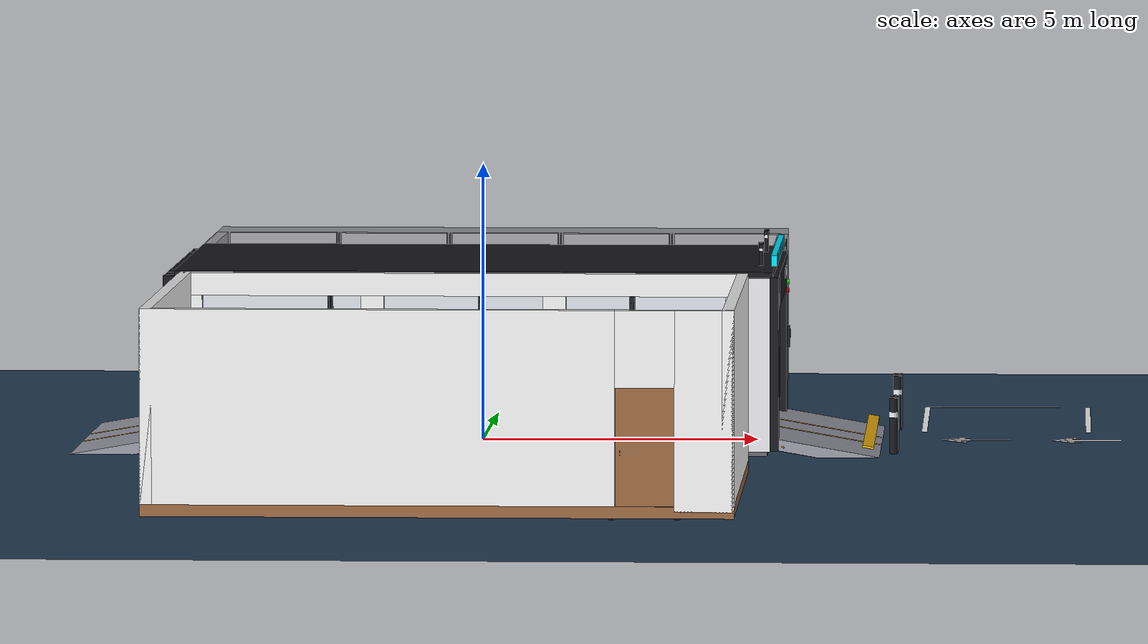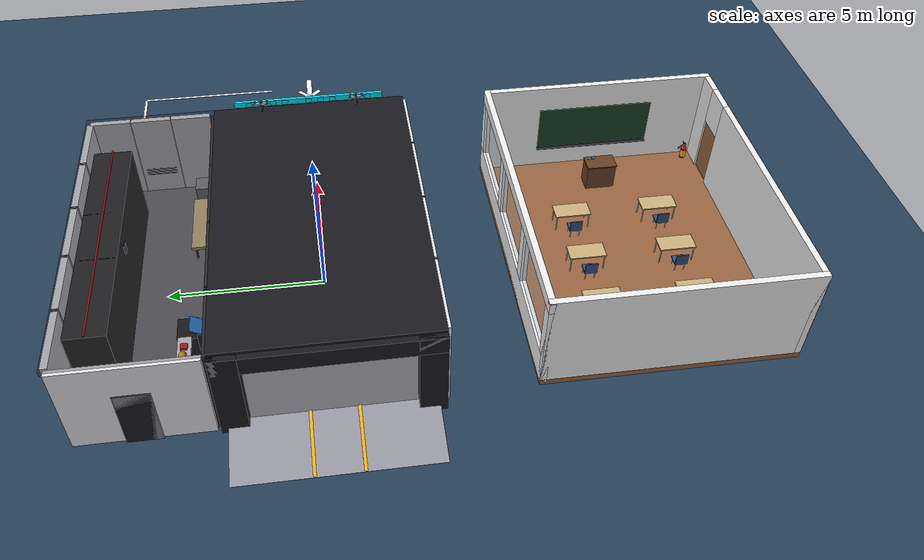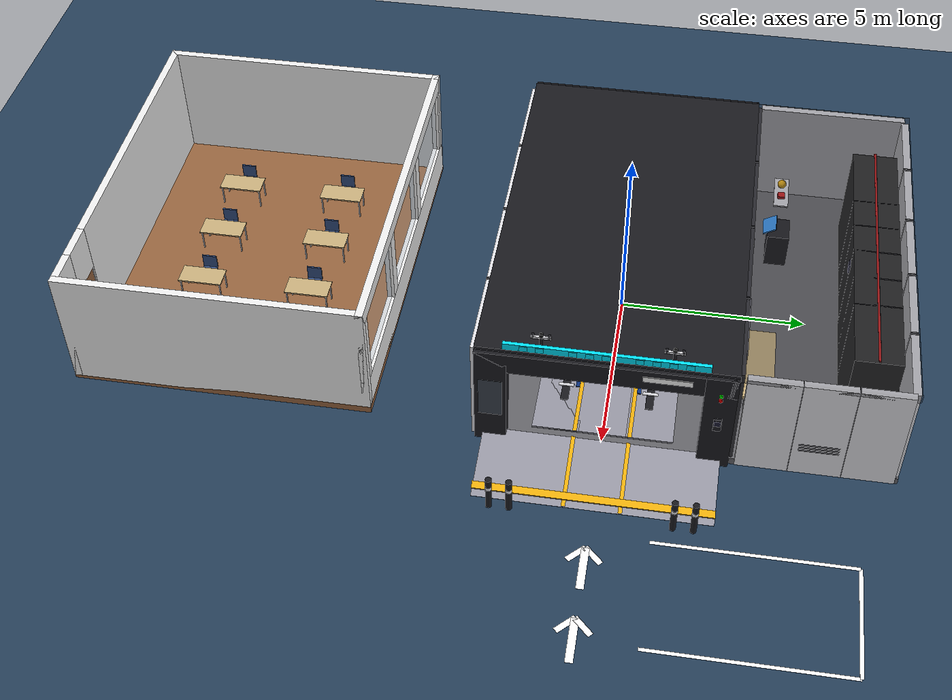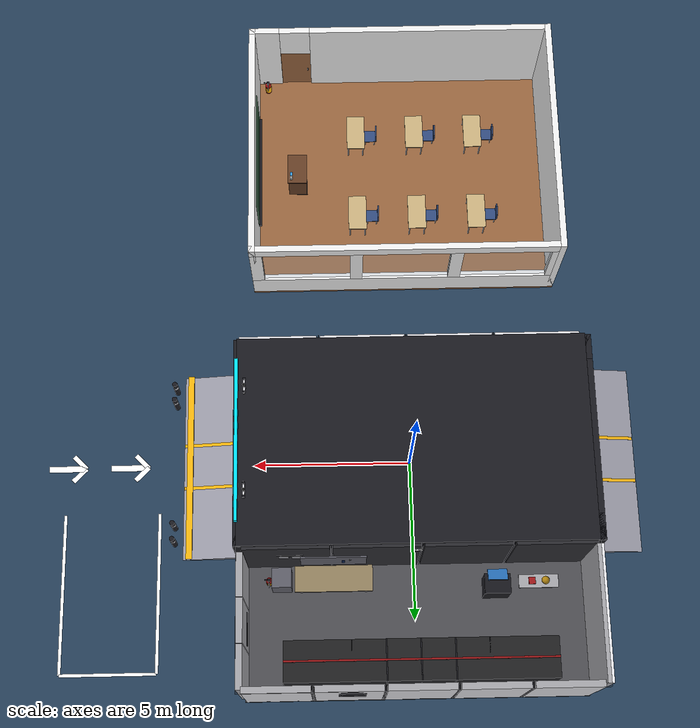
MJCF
<mujoco model="nio_power_station">
  <statistic center="0 0 1.5" extent="10.0"/>

  <visual>
    <!-- 3. 光照响应优化: Improved Lighting Quality -->
    <!-- Increased shadow quality and resolution settings if supported by viewer -->
    <headlight diffuse="0.4 0.4 0.4" ambient="0.2 0.2 0.2" specular="0.1 0.1 0.1"/>
    <rgba haze="0.15 0.25 0.35 1"/>
    <global azimuth="-120" elevation="-20" offwidth="1920" offheight="1080"/>
    <quality shadowsize="4096" offsamples="8"/> <!-- Enable high-res shadows and MSAA -->
    <map shadowclip="0.5" shadowscale="0.5"/>
  </visual>

  <asset>
    <!-- Environment Assets -->
    <texture type="skybox" builtin="gradient" rgb1="0.3 0.5 0.7" rgb2="0 0 0" width="512" height="3072"/>
    <texture type="2d" name="groundplane" builtin="checker" mark="edge" rgb1="0.2 0.3 0.4" rgb2="0.1 0.2 0.3"
      markrgb="0.8 0.8 0.8" width="300" height="300"/>

    <!-- 1. 材质系统升级: PBR-inspired Material Calibration -->
    <!-- MuJoCo Material Model:
         reflectance ~= Metallic/Specular intensity
         shininess ~= 1.0 / Roughness (High shininess = Low roughness)
         rgba ~= Albedo
    -->

    <material name="groundplane" texture="groundplane" texuniform="true" texrepeat="5 5" reflectance="0.1" shininess="0.1" specular="0.1"/>

    <!-- Metals (Silver/Chrome) -->
    <!-- High reflectance (0.8+), High specular (1.0), High shininess (0.8+) -->
    <material name="mat_wall_silver" rgba="0.9 0.9 0.92 1" reflectance="0.7" shininess="0.8" specular="1.0"/>
    <material name="mat_metal_grey" rgba="0.5 0.5 0.55 1" reflectance="0.6" shininess="0.6" specular="0.8"/>
    <material name="mat_metal_plate" rgba="0.6 0.6 0.65 1" reflectance="0.5" shininess="0.7" specular="0.6"/> <!-- Checker plate simulation -->

    <!-- Dielectrics (Plastics/Paints/Matte) -->
    <!-- Low reflectance (0.1-0.3), Moderate specular, Variable shininess -->
    <material name="mat_frame_black" rgba="0.1 0.1 0.12 1" reflectance="0.1" shininess="0.3" specular="0.3"/> <!-- Matte black metal -->
    <material name="mat_interior_dark" rgba="0.15 0.15 0.15 1" reflectance="0.05" shininess="0.1" specular="0.1"/> <!-- Dark matte plastic -->
    <material name="mat_wall_dark_grey" rgba="0.2 0.2 0.22 1" reflectance="0.1" shininess="0.2" specular="0.2"/>

    <!-- Glass (Transparent) -->
    <material name="mat_glass" rgba="0.6 0.7 0.8 0.3" reflectance="0.5" shininess="0.95" specular="1.0"/>
    <material name="mat_roof_transparent" rgba="0.1 0.1 0.12 0.3" reflectance="0.1" shininess="0.3" specular="0.3"/>

    <!-- Emissive Materials (Lighting) -->
    <material name="mat_light_strip" rgba="0.9 0.9 1.0 1" emission="1.0"/>
    <material name="mat_nio_blue_glow" rgba="0.0 0.9 1.0 1" emission="1.0" reflectance="0.1"/>
    <material name="mat_screen_glow" rgba="0.2 0.6 1.0 1" emission="0.6"/>
    <material name="mat_light_green" rgba="0 1 0 1" emission="1.0"/>
    <material name="mat_light_red" rgba="1 0 0 1" emission="1.0"/>
    <material name="mat_lcd_display" rgba="0.1 0.1 0.2 1" emission="0.4"/>
    <material name="mat_text_white" rgba="1 1 1 1" emission="0.5"/>

    <!-- Functional Colors -->
    <material name="mat_warning_yellow" rgba="0.95 0.7 0.05 1" reflectance="0.2" shininess="0.4" specular="0.2"/>
    <material name="mat_battery_pack" rgba="0.15 0.15 0.15 1" reflectance="0.2" shininess="0.5" specular="0.4"/>
    <material name="mat_floor_concrete" rgba="0.4 0.4 0.42 1" reflectance="0.1" shininess="0.1" specular="0.1"/> <!-- Rough concrete -->
    <material name="mat_door_seam" rgba="0.02 0.02 0.02 1" reflectance="0.0"/>

    <!-- Mechanical Parts -->
    <material name="mat_mechanical_blue" rgba="0.05 0.2 0.5 1" reflectance="0.4" shininess="0.6" specular="0.6"/> <!-- Painted metal -->
    <material name="mat_roller_yellow" rgba="0.9 0.7 0.1 1" reflectance="0.3" shininess="0.5" specular="0.4"/> <!-- Hard plastic/metal -->
    <material name="mat_lidar_window" rgba="0.05 0.05 0.05 1" reflectance="0.2" shininess="0.9" specular="0.8"/> <!-- Glossy black plastic -->

    <!-- Sinopec Materials - Calibrated -->
    <material name="mat_sinopec_red" rgba="0.85 0.1 0.1 1" reflectance="0.3" shininess="0.7" specular="0.5"/> <!-- Glossy plastic/metal -->
    <material name="mat_sinopec_white" rgba="0.92 0.92 0.92 1" reflectance="0.4" shininess="0.6" specular="0.5"/>
    <material name="mat_pump_island" rgba="0.2 0.2 0.2 1" reflectance="0.1" shininess="0.2" specular="0.2"/> <!-- Matte -->
    <material name="mat_pump_screen" rgba="0.05 0.05 0.15 1" emission="0.3"/>
    <material name="mat_hose_black" rgba="0.1 0.1 0.1 1" reflectance="0.05" shininess="0.2" specular="0.1"/> <!-- Rubber -->
    <material name="mat_hose_nozzle_green" rgba="0.0 0.5 0.0 1" reflectance="0.2" shininess="0.4" specular="0.3"/>
    <material name="mat_hose_nozzle_red" rgba="0.7 0.0 0.0 1" reflectance="0.2" shininess="0.4" specular="0.3"/>
    <material name="mat_hose_nozzle_yellow" rgba="0.9 0.8 0.0 1" reflectance="0.2" shininess="0.4" specular="0.3"/>
    <material name="mat_pump_panel_grey" rgba="0.6 0.6 0.65 1" reflectance="0.3" shininess="0.4" specular="0.3"/>

    <!-- Classroom Materials -->
    <material name="mat_class_wall_white" rgba="0.95 0.95 0.95 1" reflectance="0.1" shininess="0.1" specular="0.1"/>
    <material name="mat_class_floor_wood" rgba="0.6 0.4 0.25 1" reflectance="0.1" shininess="0.2" specular="0.1"/>
    <material name="mat_blackboard" rgba="0.1 0.25 0.15 1" reflectance="0.05" shininess="0.1" specular="0.1"/>
    <material name="mat_desk_top" rgba="0.8 0.7 0.5 1" reflectance="0.2" shininess="0.3" specular="0.2"/>
    <material name="mat_chair_blue" rgba="0.2 0.3 0.5 1" reflectance="0.1" shininess="0.3" specular="0.2"/>
    <material name="mat_podium" rgba="0.4 0.25 0.15 1" reflectance="0.2" shininess="0.3" specular="0.2"/>
    <material name="mat_window_glass" rgba="0.7 0.8 0.9 0.2" reflectance="0.3" shininess="0.9" specular="0.8"/>
  </asset>

  <worldbody>
    <!-- 3. 光照响应优化: Enhanced Lighting -->
    <!-- Main directional light (Sun) with Shadows enabled -->
    <light pos="5 -5 10" dir="-0.5 0.5 -1" directional="true" castshadow="true" diffuse="0.8 0.8 0.8" specular="0.3 0.3 0.3"/>

    <!-- Fill light (Skylight approximation) -->
    <light pos="-5 5 10" dir="0.5 -0.5 -1" directional="true" castshadow="false" diffuse="0.3 0.3 0.4" specular="0.0 0.0 0.0"/>

    <!-- Ground Markings -->
    <body name="floor_markings" pos="0 0 0.01">
        <!-- Entrance Arrow 1 -->
        <body name="arrow_ent_1" pos="9 0 0">
            <geom name="a1_stem" type="box" size="0.6 0.1 0.001" material="mat_text_white"/>
            <geom name="a1_head_l" type="box" size="0.3 0.08 0.001" pos="-0.4 0.2 0" euler="0 0 45" material="mat_text_white"/>
            <geom name="a1_head_r" type="box" size="0.3 0.08 0.001" pos="-0.4 -0.2 0" euler="0 0 -45" material="mat_text_white"/>
        </body>
        <!-- Entrance Arrow 2 -->
        <body name="arrow_ent_2" pos="11 0 0">
            <geom name="a2_stem" type="box" size="0.6 0.1 0.001" material="mat_text_white"/>
            <geom name="a2_head_l" type="box" size="0.3 0.08 0.001" pos="-0.4 0.2 0" euler="0 0 45" material="mat_text_white"/>
            <geom name="a2_head_r" type="box" size="0.3 0.08 0.001" pos="-0.4 -0.2 0" euler="0 0 -45" material="mat_text_white"/>
        </body>

        <!-- Parking Slot Lines (Side) -->
        <geom name="slot_line_1" type="box" size="0.05 2.5 0.001" pos="8 4.0 0" material="mat_text_white"/>
        <geom name="slot_line_2" type="box" size="0.05 2.5 0.001" pos="11 4.0 0" material="mat_text_white"/>
        <geom name="slot_line_h" type="box" size="1.5 0.05 0.001" pos="9.5 6.5 0" material="mat_text_white"/>
    </body>

    <geom name="floor" size="0 0 0.05" type="plane" material="groundplane"/>

    <!-- ================= NIO Power Swap Station Gen 3 Model ================= -->
    <body name="station_base" pos="0 0 0">

      <!-- 1. Foundation / Floor -->
      <geom name="floor_slab" type="box" size="5.25 3.1 0.1" pos="0 0 0.1" material="mat_floor_concrete"/>
      <!-- Yellow safety stripes on floor -->
      <geom name="safety_stripe_l" type="box" size="3.5 0.05 0.001" pos="1.5 1.3 0.201" material="mat_warning_yellow"/>
      <geom name="safety_stripe_r" type="box" size="3.5 0.05 0.001" pos="1.5 -1.3 0.201" material="mat_warning_yellow"/>

      <!-- 2. Main Structure Shell (Parking Bay) -->
      <!-- Cast Shadows Enabled for Main Structures -->
      <!-- Left Wall (Partition) - Panelized for realism -->
      <body name="wall_left_group" pos="0 3.2 1.65">
        <!-- Panel 1 (Front) -->
        <geom name="wall_panel_1" type="box" size="1.3 0.1 1.55" pos="3.9 0 0" material="mat_wall_dark_grey"/>
        <geom name="seam_1" type="box" size="0.01 0.105 1.55" pos="2.55 0 0" material="mat_frame_black"/>

        <!-- Panel 2 -->
        <geom name="wall_panel_2" type="box" size="1.3 0.1 1.55" pos="1.2 0 0" material="mat_wall_dark_grey"/>
        <geom name="seam_2" type="box" size="0.01 0.105 1.55" pos="-0.15 0 0" material="mat_frame_black"/>

        <!-- Panel 3 -->
        <geom name="wall_panel_3" type="box" size="1.3 0.1 1.55" pos="-1.5 0 0" material="mat_wall_dark_grey"/>
        <geom name="seam_3" type="box" size="0.01 0.105 1.55" pos="-2.85 0 0" material="mat_frame_black"/>

        <!-- Panel 4 (Back) -->
        <geom name="wall_panel_4" type="box" size="1.2 0.1 1.55" pos="-4.1 0 0" material="mat_wall_dark_grey"/>

        <!-- QR Code / Decals on Panel 1 -->
        <geom name="decal_qr1" type="box" size="0.15 0.11 0.15" pos="4.0 0 0.2" material="mat_wall_silver"/>
        <geom name="decal_qr2" type="box" size="0.15 0.11 0.15" pos="3.6 0 0.2" material="mat_wall_silver"/>

        <!-- Info Text Lines -->
        <geom name="text_line_1" type="box" size="0.4 0.11 0.02" pos="3.8 0 0.5" material="mat_wall_silver"/>
        <geom name="text_line_2" type="box" size="0.3 0.11 0.02" pos="3.8 0 0.4" material="mat_wall_silver"/>
      </body>

      <!-- Right Wall (Parking Bay) - Dual Layer (Silver Out, Dark Grey In) -->
      <body name="wall_right_group" pos="0 -3.2 1.65">
        <!-- Panel 1 -->
        <geom name="wr_panel_1_in" type="box" size="1.2 0.05 1.55" pos="4.1 0.05 0" material="mat_wall_dark_grey"/>
        <geom name="wr_panel_1_out" type="box" size="1.2 0.05 1.55" pos="4.1 -0.05 0" material="mat_wall_silver"/>
        <geom name="wr_seam_1" type="box" size="0.01 0.105 1.55" pos="2.85 0 0" material="mat_frame_black"/>

        <!-- Panel 2 -->
        <geom name="wr_panel_2_in" type="box" size="1.3 0.05 1.55" pos="1.5 0.05 0" material="mat_wall_dark_grey"/>
        <geom name="wr_panel_2_out" type="box" size="1.3 0.05 1.55" pos="1.5 -0.05 0" material="mat_wall_silver"/>
        <geom name="wr_seam_2" type="box" size="0.01 0.105 1.55" pos="0.15 0 0" material="mat_frame_black"/>

        <!-- Panel 3 -->
        <geom name="wr_panel_3_in" type="box" size="1.3 0.05 1.55" pos="-1.2 0.05 0" material="mat_wall_dark_grey"/>
        <geom name="wr_panel_3_out" type="box" size="1.3 0.05 1.55" pos="-1.2 -0.05 0" material="mat_wall_silver"/>
        <geom name="wr_seam_3" type="box" size="0.01 0.105 1.55" pos="-2.55 0 0" material="mat_frame_black"/>

        <!-- Panel 4 -->
        <geom name="wr_panel_4_in" type="box" size="1.3 0.05 1.55" pos="-3.9 0.05 0" material="mat_wall_dark_grey"/>
        <geom name="wr_panel_4_out" type="box" size="1.3 0.05 1.55" pos="-3.9 -0.05 0" material="mat_wall_silver"/>
      </body>
      <!-- Back Frame (Exit) -->
      <body name="back_frame" pos="-5.35 0 1.65">
        <geom name="b_frame_top" type="box" size="0.2 3.2 0.3" pos="0 0 1.25" material="mat_frame_black"/>
        <geom name="b_frame_left" type="box" size="0.2 0.4 1.55" pos="0 2.8 0" material="mat_frame_black"/>
        <geom name="b_frame_right" type="box" size="0.2 0.4 1.55" pos="0 -2.8 0" material="mat_frame_black"/>

      </body>

      <geom name="roof" type="box" size="5.35 3.2 0.1" pos="0 0 3.2" material="mat_frame_black"/>

      <!-- Front Frame -->
      <body name="front_frame" pos="5.25 0 1.65">
        <geom name="frame_top" type="box" size="0.2 3.2 0.3" pos="0 0 1.25" material="mat_frame_black"/>
        <geom name="frame_left" type="box" size="0.2 0.4 1.55" pos="0 2.8 0" material="mat_frame_black"/>
        <geom name="frame_right" type="box" size="0.2 0.4 1.55" pos="0 -2.8 0" material="mat_frame_black"/>
        <geom name="screen_panel" type="box" size="0.21 0.3 0.6" pos="0 -2.8 0" material="mat_glass"/>

        <!-- Entrance Lights -->
        <geom name="light_green" type="cylinder" size="0.05 0.02" pos="0.21 2.8 1.0" euler="0 90 0" material="mat_light_green"/>
        <geom name="light_red" type="cylinder" size="0.05 0.02" pos="0.21 2.8 0.85" euler="0 90 0" material="mat_light_red"/>

        <!-- NIO Power Text (Simulated with thin boxes) -->
        <geom name="text_nio" type="box" size="0.01 0.6 0.08" pos="0.21 1.5 1.3" material="mat_text_white"/>

        <!-- Blue Neon Slogan: "车电分离..." -->
        <body name="neon_sign_top" pos="0.1 0 1.8">
             <!-- Added point light for glow effect -->
             <light name="light_nio_blue_glow" pos="0.1 0 0" dir="1 0 0" attenuation="0.5 0.5 0.5" diffuse="0.0 0.8 1.0" specular="0.5 0.8 1.0" castshadow="false"/>
             <geom name="neon_glow_strip" type="box" size="0.05 2.5 0.1" material="mat_nio_blue_glow"/>
             <!-- Simulated Characters (blocks) -->
             <geom name="char_1" type="box" size="0.06 0.1 0.08" pos="0 2.0 0" material="mat_nio_blue_glow"/>
             <geom name="char_2" type="box" size="0.06 0.1 0.08" pos="0 1.6 0" material="mat_nio_blue_glow"/>
             <geom name="char_3" type="box" size="0.06 0.1 0.08" pos="0 1.2 0" material="mat_nio_blue_glow"/>
             <geom name="char_4" type="box" size="0.06 0.1 0.08" pos="0 0.8 0" material="mat_nio_blue_glow"/>

             <geom name="char_5" type="box" size="0.06 0.1 0.08" pos="0 0.0 0" material="mat_nio_blue_glow"/>
             <geom name="char_6" type="box" size="0.06 0.1 0.08" pos="0 -0.4 0" material="mat_nio_blue_glow"/>
             <geom name="char_7" type="box" size="0.06 0.1 0.08" pos="0 -0.8 0" material="mat_nio_blue_glow"/>

             <geom name="char_8" type="box" size="0.06 0.1 0.08" pos="0 -1.6 0" material="mat_nio_blue_glow"/>
             <geom name="char_9" type="box" size="0.06 0.1 0.08" pos="0 -2.0 0" material="mat_nio_blue_glow"/>
        </body>

        <!-- Card Reader / Intercom on Left Frame Pillar -->
        <geom name="intercom_box" type="box" size="0.05 0.1 0.2" pos="0.2 2.8 0" material="mat_frame_black"/>
        <geom name="intercom_screen" type="box" size="0.01 0.08 0.08" pos="0.25 2.8 0.05" material="mat_lcd_display"/>
      </body>

      <!-- Interior Details -->
      <!-- driver_screen moved to back_frame -->

      <body name="wall_details_right" pos="0 -3.15 2.0">
          <geom name="control_box_1" type="box" size="0.3 0.05 0.4" pos="1.0 0 0" material="mat_metal_grey"/>
          <geom name="control_box_2" type="box" size="0.2 0.05 0.3" pos="2.0 0 0.2" material="mat_metal_grey"/>
          <geom name="cable_tray" type="box" size="5.0 0.02 0.05" pos="0 0 0.8" material="mat_frame_black"/>

          <!-- Decorative Panels / Fire Safety -->
          <geom name="safety_panel_1" type="box" size="0.4 0.02 0.6" pos="-1.5 0 0" material="mat_wall_silver"/>
          <geom name="extinguisher_box" type="box" size="0.15 0.05 0.25" pos="-1.5 0 -0.5" material="mat_sinopec_red"/>

          <!-- Warning Signs -->
          <geom name="sign_voltage" type="box" size="0.15 0.01 0.1" pos="1.0 0.06 0.5" material="mat_warning_yellow"/>
          <geom name="sign_no_entry" type="box" size="0.15 0.01 0.1" pos="2.0 0.06 0.6" material="mat_warning_yellow"/>
      </body>

      <body name="swap_platform" pos="1.5 0 0.2">
        <!-- Improved Metal Plate Floor -->
        <geom name="platform_base_l" type="box" size="3.5 0.6 0.05" pos="0 1.2 0" material="mat_metal_plate"/>
        <geom name="platform_base_r" type="box" size="3.5 0.6 0.05" pos="0 -1.2 0" material="mat_metal_plate"/>
        <geom name="platform_center_front" type="box" size="1.0 1.5 0.05" pos="2.5 0 0" material="mat_metal_plate"/>
        <geom name="platform_center_back" type="box" size="1.0 1.5 0.05" pos="-2.5 0 0" material="mat_metal_plate"/>

        <!-- Yellow Guide Lines on Platform -->
        <geom name="guide_line_l" type="box" size="3.5 0.05 0.001" pos="0 0.7 0.051" material="mat_warning_yellow"/>
        <geom name="guide_line_r" type="box" size="3.5 0.05 0.001" pos="0 -0.7 0.051" material="mat_warning_yellow"/>

        <geom name="pit_mechanism_frame" type="box" size="1.5 0.8 0.02" pos="0 0 -0.05" material="mat_mechanical_blue"/>

        <body name="rollers_array_left" pos="0 1.1 0.08">
           <geom name="roller_frame_l" type="box" size="2.5 0.1 0.02" pos="0 0 -0.02" material="mat_frame_black"/>
           <geom name="r_l_1" type="cylinder" size="0.04 0.2" pos="2.0 0 0.02" euler="90 0 0" material="mat_wall_silver"/>
           <geom name="r_l_2" type="cylinder" size="0.04 0.2" pos="1.5 0 0.02" euler="90 0 0" material="mat_wall_silver"/>
           <geom name="r_l_3" type="cylinder" size="0.04 0.2" pos="1.0 0 0.02" euler="90 0 0" material="mat_wall_silver"/>
           <geom name="r_l_4" type="cylinder" size="0.04 0.2" pos="0.5 0 0.02" euler="90 0 0" material="mat_wall_silver"/>
           <geom name="r_l_5" type="cylinder" size="0.04 0.2" pos="0.0 0 0.02" euler="90 0 0" material="mat_wall_silver"/>
           <geom name="r_l_6" type="cylinder" size="0.04 0.2" pos="-0.5 0 0.02" euler="90 0 0" material="mat_wall_silver"/>
           <geom name="r_l_7" type="cylinder" size="0.04 0.2" pos="-1.0 0 0.02" euler="90 0 0" material="mat_wall_silver"/>
           <geom name="r_l_8" type="cylinder" size="0.04 0.2" pos="-1.5 0 0.02" euler="90 0 0" material="mat_wall_silver"/>
           <geom name="r_l_9" type="cylinder" size="0.04 0.2" pos="-2.0 0 0.02" euler="90 0 0" material="mat_wall_silver"/>
        </body>

        <body name="rollers_array_right" pos="0 -1.1 0.08">
           <geom name="roller_frame_r" type="box" size="2.5 0.1 0.02" pos="0 0 -0.02" material="mat_frame_black"/>
           <geom name="r_r_1" type="cylinder" size="0.04 0.2" pos="2.0 0 0.02" euler="90 0 0" material="mat_wall_silver"/>
           <geom name="r_r_2" type="cylinder" size="0.04 0.2" pos="1.5 0 0.02" euler="90 0 0" material="mat_wall_silver"/>
           <geom name="r_r_3" type="cylinder" size="0.04 0.2" pos="1.0 0 0.02" euler="90 0 0" material="mat_wall_silver"/>
           <geom name="r_r_4" type="cylinder" size="0.04 0.2" pos="0.5 0 0.02" euler="90 0 0" material="mat_wall_silver"/>
           <geom name="r_r_5" type="cylinder" size="0.04 0.2" pos="0.0 0 0.02" euler="90 0 0" material="mat_wall_silver"/>
           <geom name="r_r_6" type="cylinder" size="0.04 0.2" pos="-0.5 0 0.02" euler="90 0 0" material="mat_wall_silver"/>
           <geom name="r_r_7" type="cylinder" size="0.04 0.2" pos="-1.0 0 0.02" euler="90 0 0" material="mat_wall_silver"/>
           <geom name="r_r_8" type="cylinder" size="0.04 0.2" pos="-1.5 0 0.02" euler="90 0 0" material="mat_wall_silver"/>
           <geom name="r_r_9" type="cylinder" size="0.04 0.2" pos="-2.0 0 0.02" euler="90 0 0" material="mat_wall_silver"/>
        </body>

        <geom name="v_groove_l" type="box" size="2.0 0.05 0.03" pos="0 0.8 0.05" material="mat_mechanical_blue"/>
        <geom name="v_groove_r" type="box" size="2.0 0.05 0.03" pos="0 -0.8 0.05" material="mat_mechanical_blue"/>

        <body name="rgv_robot" pos="0 0 -0.15">
            <geom name="rgv_chassis" type="box" size="1.0 0.8 0.1" material="mat_mechanical_blue"/>
            <geom name="rgv_wheel_fl" type="cylinder" size="0.1 0.05" pos="0.8 0.6 -0.05" euler="90 0 0" material="mat_warning_yellow"/>
            <geom name="rgv_wheel_fr" type="cylinder" size="0.1 0.05" pos="0.8 -0.6 -0.05" euler="90 0 0" material="mat_warning_yellow"/>
            <geom name="rgv_wheel_bl" type="cylinder" size="0.1 0.05" pos="-0.8 0.6 -0.05" euler="90 0 0" material="mat_warning_yellow"/>
            <geom name="rgv_wheel_br" type="cylinder" size="0.1 0.05" pos="-0.8 -0.6 -0.05" euler="90 0 0" material="mat_warning_yellow"/>
            <geom name="rgv_lift_base" type="cylinder" size="0.4 0.05" pos="0 0 0.1" material="mat_wall_silver"/>
            <geom name="rgv_lift_top" type="box" size="0.6 0.4 0.02" pos="0 0 0.15" material="mat_warning_yellow"/>
        </body>
      </body>

      <!-- Interior Lights - High Density LED Array -->
      <light name="interior_light_1" pos="0 0 2.8" dir="0 0 -1" attenuation="0.5 0.5 0.5" diffuse="0.8 0.8 1.0"/>

      <!-- Center Array -->
      <geom name="strip_light_c1" type="box" size="4.0 0.02 0.02" pos="0 0 3.1" material="mat_light_strip"/>
      <geom name="strip_light_c2" type="box" size="4.0 0.02 0.02" pos="0 0.2 3.1" material="mat_light_strip"/>
      <geom name="strip_light_c3" type="box" size="4.0 0.02 0.02" pos="0 -0.2 3.1" material="mat_light_strip"/>

      <!-- Left Array -->
      <geom name="strip_light_l1" type="box" size="4.0 0.02 0.02" pos="0 1.2 3.1" material="mat_light_strip"/>
      <geom name="strip_light_l2" type="box" size="4.0 0.02 0.02" pos="0 1.4 3.1" material="mat_light_strip"/>
      <geom name="strip_light_l3" type="box" size="4.0 0.02 0.02" pos="0 1.6 3.1" material="mat_light_strip"/>

      <!-- Right Array -->
      <geom name="strip_light_r1" type="box" size="4.0 0.02 0.02" pos="0 -1.2 3.1" material="mat_light_strip"/>
      <geom name="strip_light_r2" type="box" size="4.0 0.02 0.02" pos="0 -1.4 3.1" material="mat_light_strip"/>
      <geom name="strip_light_r3" type="box" size="4.0 0.02 0.02" pos="0 -1.6 3.1" material="mat_light_strip"/>

      <!-- 4. Exterior Details -->

      <!-- Enhanced Ramp with Guide Lines (Entrance) -->
      <body name="ramp" pos="6.25 0 0.1">
        <!-- Main Ramp Plate -->
        <geom name="ramp_geom" type="box" size="1.0 3.0 0.1" pos="0 0 -0.05" euler="0 10 0" material="mat_metal_plate"/>
        <!-- Yellow Guide Lines on Ramp -->
        <geom name="ramp_guide_l" type="box" size="1.0 0.05 0.001" pos="0 0.7 0.06" euler="0 10 0" material="mat_warning_yellow"/>
        <geom name="ramp_guide_r" type="box" size="1.0 0.05 0.001" pos="0 -0.7 0.06" euler="0 10 0" material="mat_warning_yellow"/>
        <!-- Speed Bumps / Wheel Stops on Ramp -->
        <geom name="ramp_bump_1" type="box" size="0.1 3.0 0.02" pos="0.8 0 0.06" euler="0 10 0" material="mat_warning_yellow"/>
        <geom name="ramp_bump_2" type="box" size="0.1 3.0 0.02" pos="-0.8 0 0.06" euler="0 10 0" material="mat_warning_yellow"/>
      </body>

      <!-- Exit Ramp -->
      <body name="exit_ramp" pos="-6.25 0 0.1">
        <!-- Main Ramp Plate -->
        <geom name="e_ramp_geom" type="box" size="1.0 3.0 0.1" pos="0 0 -0.05" euler="0 -10 0" material="mat_metal_plate"/>
        <!-- Yellow Guide Lines on Ramp -->
        <geom name="e_ramp_guide_l" type="box" size="1.0 0.05 0.001" pos="0 0.7 0.06" euler="0 -10 0" material="mat_warning_yellow"/>
        <geom name="e_ramp_guide_r" type="box" size="1.0 0.05 0.001" pos="0 -0.7 0.06" euler="0 -10 0" material="mat_warning_yellow"/>
      </body>

      <body name="bollards" pos="7.5 0 0">
        <!-- Black Bollards with Reflective Strip -->
        <body name="b_l1" pos="0 2.5 0.5">
            <geom name="b_l1_main" type="cylinder" size="0.08 0.5" material="mat_frame_black"/>
            <geom name="b_l1_strip" type="cylinder" size="0.082 0.05" pos="0 0 0.2" material="mat_wall_silver"/>
        </body>
        <body name="b_l2" pos="0 2.0 0.5">
            <geom name="b_l2_main" type="cylinder" size="0.08 0.5" material="mat_frame_black"/>
            <geom name="b_l2_strip" type="cylinder" size="0.082 0.05" pos="0 0 0.2" material="mat_wall_silver"/>
        </body>
        <body name="b_r1" pos="0 -2.5 0.5">
            <geom name="b_r1_main" type="cylinder" size="0.08 0.5" material="mat_frame_black"/>
            <geom name="b_r1_strip" type="cylinder" size="0.082 0.05" pos="0 0 0.2" material="mat_wall_silver"/>
        </body>
        <body name="b_r2" pos="0 -2.0 0.5">
            <geom name="b_r2_main" type="cylinder" size="0.08 0.5" material="mat_frame_black"/>
            <geom name="b_r2_strip" type="cylinder" size="0.082 0.05" pos="0 0 0.2" material="mat_wall_silver"/>
        </body>
      </body>

      <!-- Detailed Roof Sensor Towers (Corner Mounts) -->
      <body name="sensor_tower_left" pos="5.1 1.6 3.3">
        <geom name="st_base_l" type="cylinder" size="0.04 0.15" pos="0 0 0.15" material="mat_frame_black"/>
        <geom name="st_bar_l" type="box" size="0.03 0.25 0.03" pos="0 0 0.3" material="mat_wall_silver"/>
        <geom name="st_cam_l1" type="box" size="0.04 0.03 0.04" pos="0 0.2 0.35" material="mat_frame_black"/>
        <geom name="st_cam_l1_lens" type="cylinder" size="0.015 0.01" pos="0.03 0.2 0.35" euler="0 90 0" material="mat_glass"/>
        <geom name="st_cam_l2" type="box" size="0.04 0.03 0.04" pos="0 -0.2 0.35" material="mat_frame_black"/>
        <geom name="st_cam_l2_lens" type="cylinder" size="0.015 0.01" pos="0.03 -0.2 0.35" euler="0 90 0" material="mat_glass"/>
        <geom name="st_lidar_l" type="cylinder" size="0.05 0.04" pos="0 0 0.38" material="mat_lidar_window"/>
      </body>

      <body name="sensor_tower_right" pos="5.1 -1.6 3.3">
        <geom name="st_base_r" type="cylinder" size="0.04 0.15" pos="0 0 0.15" material="mat_frame_black"/>
        <geom name="st_bar_r" type="box" size="0.03 0.25 0.03" pos="0 0 0.3" material="mat_wall_silver"/>
        <geom name="st_cam_r1" type="box" size="0.04 0.03 0.04" pos="0 0.2 0.35" material="mat_frame_black"/>
        <geom name="st_cam_r1_lens" type="cylinder" size="0.015 0.01" pos="0.03 0.2 0.35" euler="0 90 0" material="mat_glass"/>
        <geom name="st_cam_r2" type="box" size="0.04 0.03 0.04" pos="0 -0.2 0.35" material="mat_frame_black"/>
        <geom name="st_cam_r2_lens" type="cylinder" size="0.015 0.01" pos="0.03 -0.2 0.35" euler="0 90 0" material="mat_glass"/>
        <geom name="st_lidar_r" type="cylinder" size="0.05 0.04" pos="0 0 0.38" material="mat_lidar_window"/>
      </body>

      <body name="wheel_stoppers" pos="-1.5 0 0.25">
         <geom name="stop_l" type="box" size="0.1 0.3 0.1" pos="0 1.1 0" material="mat_warning_yellow"/>
         <geom name="stop_r" type="box" size="0.1 0.3 0.1" pos="0 -1.1 0" material="mat_warning_yellow"/>
      </body>

      <!-- ================= "Other Half": Power Module / Storage Unit ================= -->
      <body name="storage_unit" pos="0 5.3 0">
        <geom name="store_floor" type="box" size="5.25 2.1 0.1" pos="0 0 0.1" material="mat_floor_concrete"/>
        <geom name="store_roof" type="box" size="5.35 2.1 0.1" pos="0 0 3.2" material="mat_roof_transparent"/>
        <body name="store_wall_left_group" pos="0 2.0 1.65">
             <geom name="swl_p1" type="box" size="1.0 0.1 1.55" pos="4.2 0 0" material="mat_wall_silver"/>
             <geom name="swl_s1" type="box" size="0.01 0.105 1.55" pos="3.15 0 0" material="mat_frame_black"/>
             <geom name="swl_p2" type="box" size="1.0 0.1 1.55" pos="2.1 0 0" material="mat_wall_silver"/>
             <geom name="swl_s2" type="box" size="0.01 0.105 1.55" pos="1.05 0 0" material="mat_frame_black"/>
             <geom name="swl_p3" type="box" size="1.0 0.1 1.55" pos="0 0 0" material="mat_wall_silver"/>
             <geom name="swl_s3" type="box" size="0.01 0.105 1.55" pos="-1.05 0 0" material="mat_frame_black"/>
             <geom name="swl_p4" type="box" size="1.0 0.1 1.55" pos="-2.1 0 0" material="mat_wall_silver"/>
             <geom name="swl_s4" type="box" size="0.01 0.105 1.55" pos="-3.15 0 0" material="mat_frame_black"/>
             <geom name="swl_p5" type="box" size="1.0 0.1 1.55" pos="-4.2 0 0" material="mat_wall_silver"/>
        </body>
        <!-- Storage Unit Front Wall - Panelized with Large Logo -->
        <body name="store_front_group" pos="5.25 0 1.65">
             <geom name="sf_panel_1" type="box" size="0.1 0.65 1.55" pos="0 1.35 0" material="mat_wall_silver"/>
             <geom name="sf_seam_1" type="box" size="0.105 0.01 1.55" pos="0 0.69 0" material="mat_frame_black"/>

             <!-- Center Panel with Ventilation Grilles -->
             <geom name="sf_panel_2" type="box" size="0.1 0.65 1.55" pos="0 0.03 0" material="mat_wall_silver"/>
             <!-- Horizontal Grilles (replacing square decorations if any) -->
             <geom name="vent_h1" type="box" size="0.11 0.5 0.02" pos="0 0.03 -0.5" material="mat_frame_black"/>
             <geom name="vent_h2" type="box" size="0.11 0.5 0.02" pos="0 0.03 -0.6" material="mat_frame_black"/>
             <geom name="vent_h3" type="box" size="0.11 0.5 0.02" pos="0 0.03 -0.7" material="mat_frame_black"/>

             <geom name="sf_seam_2" type="box" size="0.105 0.01 1.55" pos="0 -0.63 0" material="mat_frame_black"/>
             <geom name="sf_panel_3" type="box" size="0.1 0.65 1.55" pos="0 -1.29 0" material="mat_wall_silver"/>

        </body>

        <geom name="store_wall_back" type="box" size="0.1 2.0 1.55" pos="-5.35 0 1.65" material="mat_wall_silver"/>

        <body name="service_door" pos="-5.48 0 1.1">
            <geom name="door_panel" type="box" size="0.02 0.5 1.0" material="mat_metal_grey"/>
            <geom name="door_handle" type="box" size="0.05 0.02 0.1" pos="0 -0.4 0" material="mat_frame_black"/>
            <geom name="door_frame" type="box" size="0.01 0.52 1.02" pos="-0.01 0 0" material="mat_frame_black"/>
        </body>

        <body name="logo_storage" pos="2.0 2.11 2.2" euler="90 0 0">
             <geom name="logo_sky_s" type="cylinder" size="0.4 0.02" pos="0 0.3 0" material="mat_frame_black"/>
             <geom name="logo_earth_s" type="box" size="0.4 0.05 0.02" pos="0 -0.3 0" material="mat_frame_black"/>
        </body>

        <!-- 1. Battery Storage Area -->
        <body name="battery_storage_area" pos="0 1.2 1.5">
             <!-- Battery Racks -->
             <geom name="rack_structure_main" type="box" size="4.0 0.6 1.4" material="mat_interior_dark"/>
             <geom name="pack_row_1" type="box" size="3.8 0.25 0.15" pos="0 -0.2 0" material="mat_battery_pack"/>
             <geom name="pack_row_2" type="box" size="3.8 0.25 0.15" pos="0 0.2 0" material="mat_battery_pack"/>
             <geom name="pack_row_3" type="box" size="3.8 0.25 0.15" pos="0 0.6 0" material="mat_battery_pack"/>

             <!-- Vertical Dividers -->
             <geom name="div_1" type="box" size="0.02 0.6 1.4" pos="0 0 0" material="mat_frame_black"/>
             <geom name="div_2" type="box" size="0.02 0.6 1.4" pos="1.0 0 0" material="mat_frame_black"/>
             <geom name="div_3" type="box" size="0.02 0.6 1.4" pos="-1.0 0 0" material="mat_frame_black"/>
             <geom name="div_4" type="box" size="0.02 0.6 1.4" pos="2.0 0 0" material="mat_frame_black"/>
             <geom name="div_5" type="box" size="0.02 0.6 1.4" pos="-2.0 0 0" material="mat_frame_black"/>

             <!-- Monitoring & Safety -->
             <geom name="temp_monitor" type="box" size="0.1 0.02 0.15" pos="0 -0.62 0.8" material="mat_lcd_display"/>
             <geom name="fire_suppression_pipe" type="cylinder" size="0.03 4.0" pos="0 0 1.45" euler="0 90 0" material="mat_sinopec_red"/>
        </body>

        <!-- 2. Work Area (Workbench & Tools) -->
         <body name="work_area" pos="2.5 -1.5 0.8">
              <geom name="workbench_top" type="box" size="1.2 0.4 0.05" material="mat_desk_top"/>
              <geom name="workbench_leg1" type="cylinder" size="0.04 0.275" pos="1.0 0.3 -0.325" material="mat_frame_black"/>
              <geom name="workbench_leg2" type="cylinder" size="0.04 0.275" pos="-1.0 0.3 -0.325" material="mat_frame_black"/>
              <geom name="workbench_leg3" type="cylinder" size="0.04 0.275" pos="1.0 -0.3 -0.325" material="mat_frame_black"/>
              <geom name="workbench_leg4" type="cylinder" size="0.04 0.275" pos="-1.0 -0.3 -0.325" material="mat_frame_black"/>

              <!-- Tool Wall -->
             <geom name="tool_board" type="box" size="1.0 0.02 0.6" pos="0 -0.42 0.8" material="mat_metal_grey"/>

             <!-- Wrench (Detailed) -->
             <body name="tool_wrench" pos="-0.5 -0.395 0.9" euler="0 0 -15">
                 <!-- Handle -->
                 <geom name="wr_handle_main" type="box" size="0.015 0.003 0.08" pos="0 0 0" material="mat_wall_silver"/>
                 <geom name="wr_handle_end" type="cylinder" size="0.015 0.003" pos="0 0 -0.08" euler="90 0 0" material="mat_wall_silver"/>
                 <geom name="wr_hole" type="cylinder" size="0.006 0.004" pos="0 0 -0.08" euler="90 0 0" material="mat_frame_black"/> <!-- Hole -->

                 <!-- Head Transition -->
                 <geom name="wr_neck" type="box" size="0.02 0.003 0.02" pos="0 0 0.09" material="mat_wall_silver"/>

                 <!-- Fixed Jaw Head -->
                 <geom name="wr_head" type="box" size="0.035 0.003 0.04" pos="-0.01 0 0.13" euler="0 0 15" material="mat_wall_silver"/>

                 <!-- Fixed Jaw Upper -->
                 <geom name="wr_jaw_fix" type="box" size="0.012 0.003 0.03" pos="-0.025 0 0.15" euler="0 0 15" material="mat_wall_silver"/>

                 <!-- Adjustable Jaw -->
                 <geom name="wr_jaw_adj" type="box" size="0.01 0.004 0.025" pos="0.015 0 0.13" euler="0 0 15" material="mat_wall_silver"/>
                 <geom name="wr_jaw_track" type="box" size="0.015 0.003 0.01" pos="0.015 0 0.10" euler="0 0 15" material="mat_wall_silver"/>

                 <!-- Worm Gear -->
                 <geom name="wr_worm" type="cylinder" size="0.008 0.015" pos="0.005 0 0.10" euler="0 90 15" material="mat_frame_black"/>
             </body>

             <geom name="tool_2" type="box" size="0.05 0.02 0.15" pos="-0.3 -0.39 0.8" material="mat_mechanical_blue"/> <!-- Screwdriver -->

             <!-- File Cabinet -->
             <geom name="file_cabinet" type="box" size="0.3 0.3 0.6" pos="1.6 0 -0.2" material="mat_metal_grey"/>
        </body>

        <!-- 3. Equipment Area (Testing & Safety Gear) -->
        <body name="equipment_area" pos="-2.5 -1.2 1.0">
             <geom name="test_console_body" type="box" size="0.4 0.3 0.6" pos="0 0 -0.4" material="mat_frame_black"/>
             <geom name="test_screen" type="box" size="0.3 0.2 0.02" pos="0 -0.25 0.3" euler="30 0 0" material="mat_screen_glow"/>

             <!-- Safety Gear Rack -->
             <geom name="gear_rack" type="box" size="0.6 0.2 0.02" pos="-1.2 0 0.5" material="mat_wall_silver"/>
             <geom name="helmet" type="sphere" size="0.12" pos="-1.4 0 0.65" material="mat_warning_yellow"/>
             <geom name="gloves" type="box" size="0.1 0.1 0.05" pos="-1.0 0 0.55" material="mat_sinopec_red"/>
        </body>

        <!-- 4. Auxiliary Facilities -->
         <body name="auxiliary_facilities" pos="0 0 2.5">
              <!-- Emergency Light (Dual Head - High Fidelity) -->
              <body name="emergency_light" pos="0 -2.0 0.2">
                  <!-- Main Control Box -->
                  <geom name="el_box" type="box" size="0.16 0.04 0.08" material="mat_class_wall_white"/>
                  <!-- Front Panel Label Area -->
                  <geom name="el_label_area" type="box" size="0.12 0.001 0.05" pos="0 -0.041 0" material="mat_wall_silver"/>

                  <!-- Status Indicators (LEDs) -->
                  <geom name="el_ind_power" type="cylinder" size="0.003 0.002" pos="0.05 -0.042 0.02" euler="90 0 0" material="mat_light_green"/>
                  <geom name="el_ind_charge" type="cylinder" size="0.003 0.002" pos="0.06 -0.042 0.02" euler="90 0 0" material="mat_light_red"/>
                  <geom name="el_ind_fault" type="cylinder" size="0.003 0.002" pos="0.07 -0.042 0.02" euler="90 0 0" material="mat_warning_yellow"/>

                  <!-- Left Lamp Head -->
                  <body name="el_head_l_group" pos="0.08 0 0.11" euler="10 0 0">
                      <geom name="el_neck_l" type="cylinder" size="0.01 0.04" pos="0 0 -0.03" material="mat_class_wall_white"/>
                      <geom name="el_shell_l" type="ellipsoid" size="0.05 0.035 0.05" pos="0 0.01 0" material="mat_class_wall_white"/>
                      <geom name="el_lens_l" type="cylinder" size="0.045 0.002" pos="0 -0.02 0" euler="90 0 0" material="mat_glass"/>
                      <geom name="el_bulb_l" type="sphere" size="0.015" pos="0 -0.005 0" material="mat_text_white"/>
                      <geom name="el_rim_l" type="cylinder" size="0.048 0.005" pos="0 -0.015 0" euler="90 0 0" material="mat_class_wall_white"/>
                  </body>

                  <!-- Right Lamp Head -->
                  <body name="el_head_r_group" pos="-0.08 0 0.11" euler="10 0 0">
                      <geom name="el_neck_r" type="cylinder" size="0.01 0.04" pos="0 0 -0.03" material="mat_class_wall_white"/>
                      <geom name="el_shell_r" type="ellipsoid" size="0.05 0.035 0.05" pos="0 0.01 0" material="mat_class_wall_white"/>
                      <geom name="el_lens_r" type="cylinder" size="0.045 0.002" pos="0 -0.02 0" euler="90 0 0" material="mat_glass"/>
                      <geom name="el_bulb_r" type="sphere" size="0.015" pos="0 -0.005 0" material="mat_text_white"/>
                      <geom name="el_rim_r" type="cylinder" size="0.048 0.005" pos="0 -0.015 0" euler="90 0 0" material="mat_class_wall_white"/>
                  </body>
              </body>

             <!-- Fire Extinguisher (Floor Standing - Detailed) -->
             <body name="fire_ext_floor" pos="4.5 -1.5 -2.15">
                  <!-- Tank Body -->
                  <geom name="fe_body" type="cylinder" size="0.1 0.25" material="mat_sinopec_red"/>
                  <geom name="fe_dome" type="sphere" size="0.1" pos="0 0 0.25" material="mat_sinopec_red"/>
                  <geom name="fe_base" type="cylinder" size="0.105 0.02" pos="0 0 -0.25" material="mat_frame_black"/>

                  <!-- Label -->
                  <geom name="fe_label" type="cylinder" size="0.102 0.15" pos="0 0 0.05" material="mat_warning_yellow"/>

                  <!-- Valve Assembly -->
                  <body name="fe_valve_group" pos="0 0 0.35">
                      <geom name="valve_neck" type="cylinder" size="0.03 0.05" material="mat_wall_silver"/>
                      <geom name="valve_head" type="box" size="0.04 0.04 0.04" pos="0 0 0.05" material="mat_frame_black"/>

                      <!-- Handle (Lever) -->
                      <geom name="handle_upper" type="box" size="0.08 0.01 0.005" pos="0.06 0 0.08" euler="0 -15 0" material="mat_frame_black"/>
                      <geom name="handle_lower" type="box" size="0.08 0.01 0.005" pos="0.06 0 0.06" euler="0 -5 0" material="mat_frame_black"/>

                      <!-- Pressure Gauge -->
                      <geom name="gauge_body" type="cylinder" size="0.025 0.01" pos="-0.04 0 0.05" euler="0 90 0" material="mat_wall_silver"/>
                      <geom name="gauge_face" type="cylinder" size="0.02 0.001" pos="-0.051 0 0.05" euler="0 90 0" material="mat_text_white"/>

                      <!-- Safety Pin -->
                      <geom name="safety_pin" type="cylinder" size="0.002 0.03" pos="0.02 0 0.06" material="mat_warning_yellow"/>

                      <!-- Hose -->
                      <geom name="hose_connector" type="cylinder" size="0.015 0.02" pos="0 0.04 0.05" euler="90 0 0" material="mat_wall_silver"/>
                      <geom name="hose_tube" type="capsule" size="0.015 0.1" pos="0 0.1 0.02" euler="45 0 0" material="mat_frame_black"/>
                      <geom name="hose_nozzle" type="cylinder" size="0.02 0.04" pos="0 0.18 -0.06" euler="45 0 0" material="mat_frame_black"/>
                  </body>
             </body>

        </body>
      </body>
    </body>

    <!-- ================= Classroom Model ================= -->
    <body name="classroom" pos="0 -10 0">
        <!-- Structure -->
        <geom name="class_floor" type="box" size="5.0 4.0 0.1" pos="0 0 0.1" material="mat_class_floor_wood"/>

        <!-- Walls -->
        <!-- Front Wall (Blackboard side) -->
        <geom name="class_wall_front" type="box" size="0.1 4.0 1.7" pos="4.9 0 1.8" material="mat_class_wall_white"/>
        <!-- Back Wall (Restored) -->
        <geom name="class_wall_back" type="box" size="0.1 4.0 1.7" pos="-4.9 0 1.8" material="mat_class_wall_white"/>

        <!-- Right Wall with Door (Front Side) -->
        <body name="class_wall_right_group" pos="0 -3.9 0">
            <!-- Main Wall Section (Back) -->
            <geom name="cwr_main" type="box" size="4.0 0.1 1.7" pos="-1.0 0 1.8" material="mat_class_wall_white"/>
            <!-- Small Wall Section (Front) -->
            <geom name="cwr_front" type="box" size="0.5 0.1 1.7" pos="4.5 0 1.8" material="mat_class_wall_white"/>
            <!-- Door Header -->
            <geom name="cwr_header" type="box" size="0.5 0.1 0.65" pos="3.5 0 2.85" material="mat_class_wall_white"/>

            <!-- Classroom Door (Right Wall) -->
            <body name="class_door_right" pos="3.5 0 1.1">
                <geom name="c_door_panel_r" type="box" size="0.5 0.04 1.1" material="mat_class_floor_wood"/>
                <geom name="c_door_handle_r" type="box" size="0.02 0.06 0.05" pos="-0.4 0.02 0" material="mat_frame_black"/>
                <!-- Door Frame -->
                <geom name="cdf_top_r" type="box" size="0.55 0.06 0.05" pos="0 0 1.15" material="mat_frame_black"/>
                <geom name="cdf_left_r" type="box" size="0.05 0.06 1.2" pos="-0.55 0 0" material="mat_frame_black"/>
                <geom name="cdf_right_r" type="box" size="0.05 0.06 1.2" pos="0.55 0 0" material="mat_frame_black"/>
            </body>
        </body>
        <!-- Left Wall (Windows) -->
        <body name="class_wall_left_windows" pos="0 3.9 1.8">
            <geom name="w_l_bottom" type="box" size="5.0 0.1 0.5" pos="0 0 -1.2" material="mat_class_wall_white"/>
            <geom name="w_l_top" type="box" size="5.0 0.1 0.2" pos="0 0 1.5" material="mat_class_wall_white"/>
            <geom name="w_l_pillar1" type="box" size="0.2 0.1 1.0" pos="4.8 0 0.3" material="mat_class_wall_white"/>
            <geom name="w_l_pillar2" type="box" size="0.2 0.1 1.0" pos="1.6 0 0.3" material="mat_class_wall_white"/>
            <geom name="w_l_pillar3" type="box" size="0.2 0.1 1.0" pos="-1.6 0 0.3" material="mat_class_wall_white"/>
            <geom name="w_l_pillar4" type="box" size="0.2 0.1 1.0" pos="-4.8 0 0.3" material="mat_class_wall_white"/>

            <!-- Glass Panes -->
            <geom name="window_glass_1" type="box" size="1.4 0.02 1.0" pos="3.2 0 0.3" material="mat_window_glass"/>
            <geom name="window_glass_2" type="box" size="1.4 0.02 1.0" pos="0 0 0.3" material="mat_window_glass"/>
            <geom name="window_glass_3" type="box" size="1.4 0.02 1.0" pos="-3.2 0 0.3" material="mat_window_glass"/>
        </body>

        <!-- Blackboard -->
        <geom name="blackboard" type="box" size="0.02 2.0 0.8" pos="4.8 0 1.8" material="mat_blackboard"/>
        <geom name="chalk_tray" type="box" size="0.05 2.0 0.02" pos="4.75 0 0.95" material="mat_frame_black"/>

        <!-- Podium (Detailed) -->
        <body name="podium" pos="3.5 0 0.6">
            <geom name="pod_body" type="box" size="0.3 0.5 0.5" material="mat_podium"/>
            <geom name="pod_top" type="box" size="0.32 0.52 0.02" pos="0 0 0.52" material="mat_podium"/>
            <geom name="pod_base" type="box" size="0.32 0.52 0.05" pos="0 0 -0.45" material="mat_frame_black"/>

            <!-- Chalk Boxes -->
            <body name="chalk_boxes" pos="0.2 0.35 0.56">
                <!-- White Chalk Box -->
                <geom name="c_box_1" type="box" size="0.04 0.06 0.02" pos="0 0 0" rgba="1 1 1 1"/>
                <geom name="c_stick_w1" type="cylinder" size="0.004 0.02" pos="0 0.02 0.02" euler="0 90 0" rgba="0.9 0.9 0.9 1"/>
                <geom name="c_stick_w2" type="cylinder" size="0.004 0.02" pos="0 0.0 0.02" euler="0 90 0" rgba="0.9 0.9 0.9 1"/>
                <geom name="c_stick_w3" type="cylinder" size="0.004 0.02" pos="0 -0.02 0.02" euler="0 90 0" rgba="0.9 0.9 0.9 1"/>

                <!-- Color Chalk Box -->
                <geom name="c_box_2" type="box" size="0.04 0.06 0.02" pos="0 -0.15 0" rgba="0.2 0.6 0.9 1"/>
                <geom name="c_stick_c1" type="cylinder" size="0.004 0.02" pos="0 -0.13 0.02" euler="0 90 0" rgba="1 0.5 0.5 1"/>
                <geom name="c_stick_c2" type="cylinder" size="0.004 0.02" pos="0 -0.15 0.02" euler="0 90 0" rgba="0.5 1 0.5 1"/>
                <geom name="c_stick_c3" type="cylinder" size="0.004 0.02" pos="0 -0.17 0.02" euler="0 90 0" rgba="0.5 0.5 1 1"/>
            </body>
        </body>

        <!-- Fire Extinguisher (Classroom) -->
         <body name="class_fire_ext" pos="4.5 -3.5 0.35">
              <!-- Tank Body -->
              <geom name="cfe_body" type="cylinder" size="0.1 0.25" material="mat_sinopec_red"/>
             <geom name="cfe_dome" type="sphere" size="0.1" pos="0 0 0.25" material="mat_sinopec_red"/>
             <geom name="cfe_base" type="cylinder" size="0.105 0.02" pos="0 0 -0.25" material="mat_frame_black"/>

             <!-- Label -->
             <geom name="cfe_label" type="cylinder" size="0.102 0.15" pos="0 0 0.05" material="mat_warning_yellow"/>

             <!-- Valve Assembly -->
             <body name="cfe_valve_group" pos="0 0 0.35">
                 <geom name="c_valve_neck" type="cylinder" size="0.03 0.05" material="mat_wall_silver"/>
                 <geom name="c_valve_head" type="box" size="0.04 0.04 0.04" pos="0 0 0.05" material="mat_frame_black"/>

                 <!-- Handle (Lever) -->
                 <geom name="c_handle_upper" type="box" size="0.08 0.01 0.005" pos="0.06 0 0.08" euler="0 -15 0" material="mat_frame_black"/>
                 <geom name="c_handle_lower" type="box" size="0.08 0.01 0.005" pos="0.06 0 0.06" euler="0 -5 0" material="mat_frame_black"/>

                 <!-- Pressure Gauge -->
                 <geom name="c_gauge_body" type="cylinder" size="0.025 0.01" pos="-0.04 0 0.05" euler="0 90 0" material="mat_wall_silver"/>
                 <geom name="c_gauge_face" type="cylinder" size="0.02 0.001" pos="-0.051 0 0.05" euler="0 90 0" material="mat_text_white"/>

                 <!-- Safety Pin -->
                 <geom name="c_safety_pin" type="cylinder" size="0.002 0.03" pos="0.02 0 0.06" material="mat_warning_yellow"/>

                 <!-- Hose -->
                 <geom name="c_hose_connector" type="cylinder" size="0.015 0.02" pos="0 0.04 0.05" euler="90 0 0" material="mat_wall_silver"/>
                 <geom name="c_hose_tube" type="capsule" size="0.015 0.1" pos="0 0.1 0.02" euler="45 0 0" material="mat_frame_black"/>
                 <geom name="c_hose_nozzle" type="cylinder" size="0.02 0.04" pos="0 0.18 -0.06" euler="45 0 0" material="mat_frame_black"/>
             </body>
        </body>

        <!-- Desks and Chairs Rows -->
        <!-- Row 1 -->
        <body name="desk_row_1" pos="1.5 0 0">
             <body name="d1_l" pos="0 1.5 0">
                 <geom name="d1_l_top" type="box" size="0.3 0.6 0.02" pos="0 0 0.8" material="mat_desk_top"/>
                 <geom name="d1_l_leg1" type="cylinder" size="0.02 0.4" pos="0.25 0.55 0.4" material="mat_frame_black"/>
                 <geom name="d1_l_leg2" type="cylinder" size="0.02 0.4" pos="0.25 -0.55 0.4" material="mat_frame_black"/>
                 <geom name="d1_l_leg3" type="cylinder" size="0.02 0.4" pos="-0.25 0.55 0.4" material="mat_frame_black"/>
                 <geom name="d1_l_leg4" type="cylinder" size="0.02 0.4" pos="-0.25 -0.55 0.4" material="mat_frame_black"/>
                 <geom name="c1_l_seat" type="box" size="0.2 0.2 0.02" pos="-0.5 0 0.5" material="mat_chair_blue"/>
                 <geom name="c1_l_back" type="box" size="0.02 0.2 0.2" pos="-0.7 0 0.7" material="mat_chair_blue"/>
                 <!-- Chair Legs -->
                 <geom name="c1_l_leg1" type="cylinder" size="0.015 0.25" pos="-0.35 0.15 0.25" material="mat_frame_black"/>
                 <geom name="c1_l_leg2" type="cylinder" size="0.015 0.25" pos="-0.35 -0.15 0.25" material="mat_frame_black"/>
                 <geom name="c1_l_leg3" type="cylinder" size="0.015 0.25" pos="-0.65 0.15 0.25" material="mat_frame_black"/>
                 <geom name="c1_l_leg4" type="cylinder" size="0.015 0.25" pos="-0.65 -0.15 0.25" material="mat_frame_black"/>
             </body>
             <body name="d1_r" pos="0 -1.5 0">
                 <geom name="d1_r_top" type="box" size="0.3 0.6 0.02" pos="0 0 0.8" material="mat_desk_top"/>
                 <geom name="d1_r_leg1" type="cylinder" size="0.02 0.4" pos="0.25 0.55 0.4" material="mat_frame_black"/>
                 <geom name="d1_r_leg2" type="cylinder" size="0.02 0.4" pos="0.25 -0.55 0.4" material="mat_frame_black"/>
                 <geom name="d1_r_leg3" type="cylinder" size="0.02 0.4" pos="-0.25 0.55 0.4" material="mat_frame_black"/>
                 <geom name="d1_r_leg4" type="cylinder" size="0.02 0.4" pos="-0.25 -0.55 0.4" material="mat_frame_black"/>
                 <geom name="c1_r_seat" type="box" size="0.2 0.2 0.02" pos="-0.5 0 0.5" material="mat_chair_blue"/>
                 <geom name="c1_r_back" type="box" size="0.02 0.2 0.2" pos="-0.7 0 0.7" material="mat_chair_blue"/>
                 <!-- Chair Legs -->
                 <geom name="c1_r_leg1" type="cylinder" size="0.015 0.25" pos="-0.35 0.15 0.25" material="mat_frame_black"/>
                 <geom name="c1_r_leg2" type="cylinder" size="0.015 0.25" pos="-0.35 -0.15 0.25" material="mat_frame_black"/>
                 <geom name="c1_r_leg3" type="cylinder" size="0.015 0.25" pos="-0.65 0.15 0.25" material="mat_frame_black"/>
                 <geom name="c1_r_leg4" type="cylinder" size="0.015 0.25" pos="-0.65 -0.15 0.25" material="mat_frame_black"/>
             </body>
        </body>

        <!-- Row 2 -->
        <body name="desk_row_2" pos="-0.5 0 0">
             <body name="d2_l" pos="0 1.5 0">
                 <geom name="d2_l_top" type="box" size="0.3 0.6 0.02" pos="0 0 0.8" material="mat_desk_top"/>
                 <geom name="d2_l_leg1" type="cylinder" size="0.02 0.4" pos="0.25 0.55 0.4" material="mat_frame_black"/>
                 <geom name="d2_l_leg2" type="cylinder" size="0.02 0.4" pos="0.25 -0.55 0.4" material="mat_frame_black"/>
                 <geom name="d2_l_leg3" type="cylinder" size="0.02 0.4" pos="-0.25 0.55 0.4" material="mat_frame_black"/>
                 <geom name="d2_l_leg4" type="cylinder" size="0.02 0.4" pos="-0.25 -0.55 0.4" material="mat_frame_black"/>
                 <geom name="c2_l_seat" type="box" size="0.2 0.2 0.02" pos="-0.5 0 0.5" material="mat_chair_blue"/>
                 <geom name="c2_l_back" type="box" size="0.02 0.2 0.2" pos="-0.7 0 0.7" material="mat_chair_blue"/>
                 <!-- Chair Legs -->
                 <geom name="c2_l_leg1" type="cylinder" size="0.015 0.25" pos="-0.35 0.15 0.25" material="mat_frame_black"/>
                 <geom name="c2_l_leg2" type="cylinder" size="0.015 0.25" pos="-0.35 -0.15 0.25" material="mat_frame_black"/>
                 <geom name="c2_l_leg3" type="cylinder" size="0.015 0.25" pos="-0.65 0.15 0.25" material="mat_frame_black"/>
                 <geom name="c2_l_leg4" type="cylinder" size="0.015 0.25" pos="-0.65 -0.15 0.25" material="mat_frame_black"/>
             </body>
             <body name="d2_r" pos="0 -1.5 0">
                 <geom name="d2_r_top" type="box" size="0.3 0.6 0.02" pos="0 0 0.8" material="mat_desk_top"/>
                 <geom name="d2_r_leg1" type="cylinder" size="0.02 0.4" pos="0.25 0.55 0.4" material="mat_frame_black"/>
                 <geom name="d2_r_leg2" type="cylinder" size="0.02 0.4" pos="0.25 -0.55 0.4" material="mat_frame_black"/>
                 <geom name="d2_r_leg3" type="cylinder" size="0.02 0.4" pos="-0.25 0.55 0.4" material="mat_frame_black"/>
                 <geom name="d2_r_leg4" type="cylinder" size="0.02 0.4" pos="-0.25 -0.55 0.4" material="mat_frame_black"/>
                 <geom name="c2_r_seat" type="box" size="0.2 0.2 0.02" pos="-0.5 0 0.5" material="mat_chair_blue"/>
                 <geom name="c2_r_back" type="box" size="0.02 0.2 0.2" pos="-0.7 0 0.7" material="mat_chair_blue"/>
                 <!-- Chair Legs -->
                 <geom name="c2_r_leg1" type="cylinder" size="0.015 0.25" pos="-0.35 0.15 0.25" material="mat_frame_black"/>
                 <geom name="c2_r_leg2" type="cylinder" size="0.015 0.25" pos="-0.35 -0.15 0.25" material="mat_frame_black"/>
                 <geom name="c2_r_leg3" type="cylinder" size="0.015 0.25" pos="-0.65 0.15 0.25" material="mat_frame_black"/>
                 <geom name="c2_r_leg4" type="cylinder" size="0.015 0.25" pos="-0.65 -0.15 0.25" material="mat_frame_black"/>
             </body>
        </body>

        <!-- Row 3 -->
        <body name="desk_row_3" pos="-2.5 0 0">
             <body name="d3_l" pos="0 1.5 0">
                 <geom name="d3_l_top" type="box" size="0.3 0.6 0.02" pos="0 0 0.8" material="mat_desk_top"/>
                 <geom name="d3_l_leg1" type="cylinder" size="0.02 0.4" pos="0.25 0.55 0.4" material="mat_frame_black"/>
                 <geom name="d3_l_leg2" type="cylinder" size="0.02 0.4" pos="0.25 -0.55 0.4" material="mat_frame_black"/>
                 <geom name="d3_l_leg3" type="cylinder" size="0.02 0.4" pos="-0.25 0.55 0.4" material="mat_frame_black"/>
                 <geom name="d3_l_leg4" type="cylinder" size="0.02 0.4" pos="-0.25 -0.55 0.4" material="mat_frame_black"/>
                 <geom name="c3_l_seat" type="box" size="0.2 0.2 0.02" pos="-0.5 0 0.5" material="mat_chair_blue"/>
                 <geom name="c3_l_back" type="box" size="0.02 0.2 0.2" pos="-0.7 0 0.7" material="mat_chair_blue"/>
                 <!-- Chair Legs -->
                 <geom name="c3_l_leg1" type="cylinder" size="0.015 0.25" pos="-0.35 0.15 0.25" material="mat_frame_black"/>
                 <geom name="c3_l_leg2" type="cylinder" size="0.015 0.25" pos="-0.35 -0.15 0.25" material="mat_frame_black"/>
                 <geom name="c3_l_leg3" type="cylinder" size="0.015 0.25" pos="-0.65 0.15 0.25" material="mat_frame_black"/>
                 <geom name="c3_l_leg4" type="cylinder" size="0.015 0.25" pos="-0.65 -0.15 0.25" material="mat_frame_black"/>
             </body>
             <body name="d3_r" pos="0 -1.5 0">
                 <geom name="d3_r_top" type="box" size="0.3 0.6 0.02" pos="0 0 0.8" material="mat_desk_top"/>
                 <geom name="d3_r_leg1" type="cylinder" size="0.02 0.4" pos="0.25 0.55 0.4" material="mat_frame_black"/>
                 <geom name="d3_r_leg2" type="cylinder" size="0.02 0.4" pos="0.25 -0.55 0.4" material="mat_frame_black"/>
                 <geom name="d3_r_leg3" type="cylinder" size="0.02 0.4" pos="-0.25 0.55 0.4" material="mat_frame_black"/>
                 <geom name="d3_r_leg4" type="cylinder" size="0.02 0.4" pos="-0.25 -0.55 0.4" material="mat_frame_black"/>
                 <geom name="c3_r_seat" type="box" size="0.2 0.2 0.02" pos="-0.5 0 0.5" material="mat_chair_blue"/>
                 <geom name="c3_r_back" type="box" size="0.02 0.2 0.2" pos="-0.7 0 0.7" material="mat_chair_blue"/>
                 <!-- Chair Legs -->
                 <geom name="c3_r_leg1" type="cylinder" size="0.015 0.25" pos="-0.35 0.15 0.25" material="mat_frame_black"/>
                 <geom name="c3_r_leg2" type="cylinder" size="0.015 0.25" pos="-0.35 -0.15 0.25" material="mat_frame_black"/>
                 <geom name="c3_r_leg3" type="cylinder" size="0.015 0.25" pos="-0.65 0.15 0.25" material="mat_frame_black"/>
                 <geom name="c3_r_leg4" type="cylinder" size="0.015 0.25" pos="-0.65 -0.15 0.25" material="mat_frame_black"/>
             </body>
        </body>
    </body>
  </worldbody>
</mujoco>
